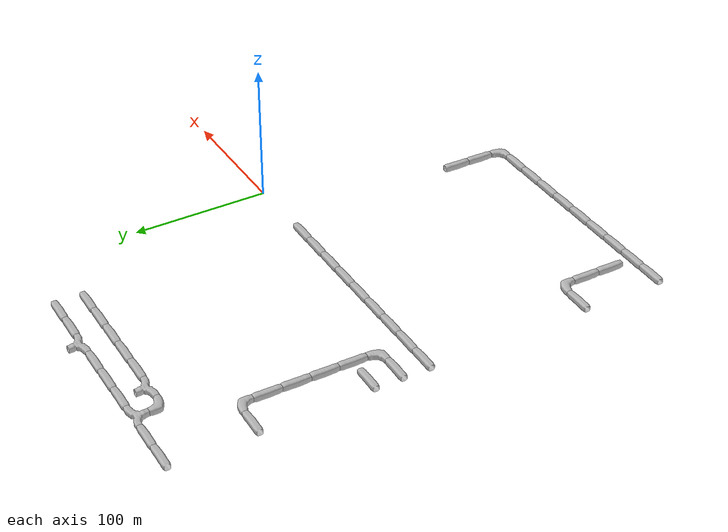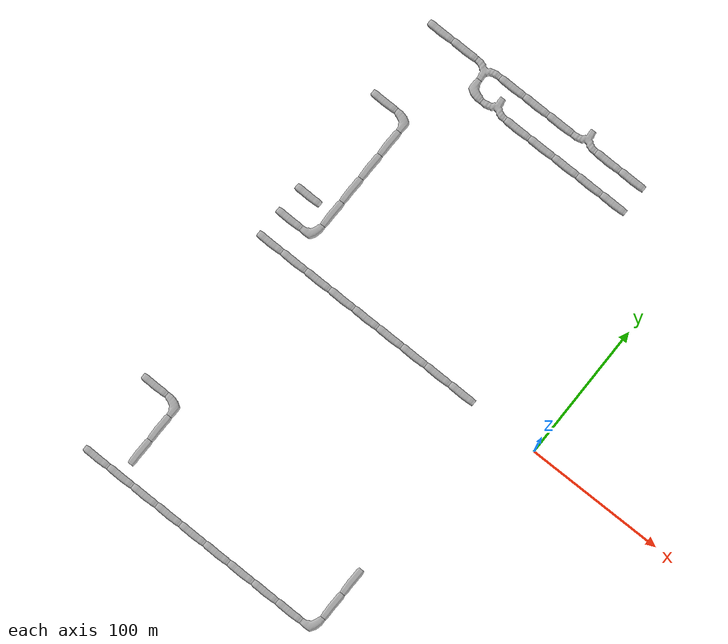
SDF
<sdf version="1.6">
 <world name="cave_16000">
  <include>
   <static>true</static>
   <name>cave_-2_-7</name>
   <pose>-40 -140 0 0 0 0.0</pose>
   <uri>model://cave_straight_20m</uri>
  </include>
  <include>
   <static>true</static>
   <name>cave_-2_-8</name>
   <pose>-40 -160 0 0 0 0.0</pose>
   <uri>model://cave_straight_20m</uri>
  </include>
  <include>
   <static>true</static>
   <name>cave_-2_-9</name>
   <pose>-40 -180 0 0 0 1.5707963267948966</pose>
   <uri>model://cave_L_20m</uri>
  </include>
  <include>
   <static>true</static>
   <name>cave_-3_-9</name>
   <pose>-60 -180 0 0 0 1.5707963267948966</pose>
   <uri>model://cave_straight_20m</uri>
  </include>
  <include>
   <static>true</static>
   <name>cave_-4_-9</name>
   <pose>-80 -180 0 0 0 1.5707963267948966</pose>
   <uri>model://cave_straight_20m</uri>
  </include>
  <include>
   <static>true</static>
   <name>cave_-5_-9</name>
   <pose>-100 -180 0 0 0 1.5707963267948966</pose>
   <uri>model://cave_straight_20m</uri>
  </include>
  <include>
   <static>true</static>
   <name>cave_-6_-9</name>
   <pose>-120 -180 0 0 0 1.5707963267948966</pose>
   <uri>model://cave_straight_20m</uri>
  </include>
  <include>
   <static>true</static>
   <name>cave_-7_-9</name>
   <pose>-140 -180 0 0 0 1.5707963267948966</pose>
   <uri>model://cave_straight_20m</uri>
  </include>
  <include>
   <static>true</static>
   <name>cave_-8_-9</name>
   <pose>-160 -180 0 0 0 1.5707963267948966</pose>
   <uri>model://cave_straight_20m</uri>
  </include>
  <include>
   <static>true</static>
   <name>cave_-9_-9</name>
   <pose>-180 -180 0 0 0 1.5707963267948966</pose>
   <uri>model://cave_straight_20m</uri>
  </include>
  <include>
   <static>true</static>
   <name>cave_-10_-9</name>
   <pose>-200 -180 0 0 0 1.5707963267948966</pose>
   <uri>model://cave_straight_20m</uri>
  </include>
  <include>
   <static>true</static>
   <name>cave_-11_-9</name>
   <pose>-220 -180 0 0 0 1.5707963267948966</pose>
   <uri>model://cave_straight_20m</uri>
  </include>
  <include>
   <static>true</static>
   <name>cave_-11_-6</name>
   <pose>-220 -120 0 0 0 1.5707963267948966</pose>
   <uri>model://cave_straight_20m</uri>
  </include>
  <include>
   <static>true</static>
   <name>cave_-10_-6</name>
   <pose>-200 -120 0 0 0 3.141592653589793</pose>
   <uri>model://cave_L_20m</uri>
  </include>
  <include>
   <static>true</static>
   <name>cave_-10_-7</name>
   <pose>-200 -140 0 0 0 0.0</pose>
   <uri>model://cave_straight_20m</uri>
  </include>
  <include>
   <static>true</static>
   <name>cave_-10_-8</name>
   <pose>-200 -160 0 0 0 0.0</pose>
   <uri>model://cave_straight_20m</uri>
  </include>
  <include>
   <static>true</static>
   <name>cave_-3_0</name>
   <pose>-60 0 0 0 0 1.5707963267948966</pose>
   <uri>model://cave_straight_20m</uri>
  </include>
  <include>
   <static>true</static>
   <name>cave_-4_0</name>
   <pose>-80 0 0 0 0 1.5707963267948966</pose>
   <uri>model://cave_straight_20m</uri>
  </include>
  <include>
   <static>true</static>
   <name>cave_-5_0</name>
   <pose>-100 0 0 0 0 1.5707963267948966</pose>
   <uri>model://cave_straight_20m</uri>
  </include>
  <include>
   <static>true</static>
   <name>cave_-6_0</name>
   <pose>-120 0 0 0 0 1.5707963267948966</pose>
   <uri>model://cave_straight_20m</uri>
  </include>
  <include>
   <static>true</static>
   <name>cave_-7_0</name>
   <pose>-140 0 0 0 0 1.5707963267948966</pose>
   <uri>model://cave_straight_20m</uri>
  </include>
  <include>
   <static>true</static>
   <name>cave_-8_0</name>
   <pose>-160 0 0 0 0 1.5707963267948966</pose>
   <uri>model://cave_straight_20m</uri>
  </include>
  <include>
   <static>true</static>
   <name>cave_-9_0</name>
   <pose>-180 0 0 0 0 1.5707963267948966</pose>
   <uri>model://cave_straight_20m</uri>
  </include>
  <include>
   <static>true</static>
   <name>cave_-10_0</name>
   <pose>-200 0 0 0 0 1.5707963267948966</pose>
   <uri>model://cave_straight_20m</uri>
  </include>
  <include>
   <static>true</static>
   <name>cave_-11_0</name>
   <pose>-220 0 0 0 0 1.5707963267948966</pose>
   <uri>model://cave_straight_20m</uri>
  </include>
  <include>
   <static>true</static>
   <name>cave_-11_1</name>
   <pose>-220 20 0 0 0 1.5707963267948966</pose>
   <uri>model://cave_straight_20m</uri>
  </include>
  <include>
   <static>true</static>
   <name>cave_-10_1</name>
   <pose>-200 20 0 0 0 1.5707963267948966</pose>
   <uri>model://cave_L_20m</uri>
  </include>
  <include>
   <static>true</static>
   <name>cave_-10_2</name>
   <pose>-200 40 0 0 0 0.0</pose>
   <uri>model://cave_straight_20m</uri>
  </include>
  <include>
   <static>true</static>
   <name>cave_-10_3</name>
   <pose>-200 60 0 0 0 0.0</pose>
   <uri>model://cave_straight_20m</uri>
  </include>
  <include>
   <static>true</static>
   <name>cave_-10_4</name>
   <pose>-200 80 0 0 0 0.0</pose>
   <uri>model://cave_straight_20m</uri>
  </include>
  <include>
   <static>true</static>
   <name>cave_-10_5</name>
   <pose>-200 100 0 0 0 0.0</pose>
   <uri>model://cave_straight_20m</uri>
  </include>
  <include>
   <static>true</static>
   <name>cave_-10_6</name>
   <pose>-200 120 0 0 0 3.141592653589793</pose>
   <uri>model://cave_L_20m</uri>
  </include>
  <include>
   <static>true</static>
   <name>cave_-11_6</name>
   <pose>-220 120 0 0 0 1.5707963267948966</pose>
   <uri>model://cave_straight_20m</uri>
  </include>
  <include>
   <static>true</static>
   <name>cave_-11_2</name>
   <pose>-220 40 0 0 0 1.5707963267948966</pose>
   <uri>model://cave_straight_20m</uri>
  </include>
  <include>
   <static>true</static>
   <name>cave_-3_9</name>
   <pose>-60 180 0 0 0 1.5707963267948966</pose>
   <uri>model://cave_straight_20m</uri>
  </include>
  <include>
   <static>true</static>
   <name>cave_-4_9</name>
   <pose>-80 180 0 0 0 1.5707963267948966</pose>
   <uri>model://cave_straight_20m</uri>
  </include>
  <include>
   <static>true</static>
   <name>cave_-5_9</name>
   <pose>-100 180 0 0 0 0.0</pose>
   <uri>model://cave_3way_20m</uri>
  </include>
  <include>
   <static>true</static>
   <name>cave_-6_9</name>
   <pose>-120 180 0 0 0 1.5707963267948966</pose>
   <uri>model://cave_straight_20m</uri>
  </include>
  <include>
   <static>true</static>
   <name>cave_-7_9</name>
   <pose>-140 180 0 0 0 1.5707963267948966</pose>
   <uri>model://cave_straight_20m</uri>
  </include>
  <include>
   <static>true</static>
   <name>cave_-8_9</name>
   <pose>-160 180 0 0 0 1.5707963267948966</pose>
   <uri>model://cave_straight_20m</uri>
  </include>
  <include>
   <static>true</static>
   <name>cave_-9_9</name>
   <pose>-180 180 0 0 0 3.141592653589793</pose>
   <uri>model://cave_3way_20m</uri>
  </include>
  <include>
   <static>true</static>
   <name>cave_-9_8</name>
   <pose>-180 160 0 0 0 0.0</pose>
   <uri>model://cave_L_20m</uri>
  </include>
  <include>
   <static>true</static>
   <name>cave_-8_8</name>
   <pose>-160 160 0 0 0 0.0</pose>
   <uri>model://cave_3way_20m</uri>
  </include>
  <include>
   <static>true</static>
   <name>cave_-7_8</name>
   <pose>-140 160 0 0 0 1.5707963267948966</pose>
   <uri>model://cave_straight_20m</uri>
  </include>
  <include>
   <static>true</static>
   <name>cave_-6_8</name>
   <pose>-120 160 0 0 0 1.5707963267948966</pose>
   <uri>model://cave_straight_20m</uri>
  </include>
  <include>
   <static>true</static>
   <name>cave_-5_8</name>
   <pose>-100 160 0 0 0 1.5707963267948966</pose>
   <uri>model://cave_straight_20m</uri>
  </include>
  <include>
   <static>true</static>
   <name>cave_-4_8</name>
   <pose>-80 160 0 0 0 1.5707963267948966</pose>
   <uri>model://cave_straight_20m</uri>
  </include>
  <include>
   <static>true</static>
   <name>cave_-3_8</name>
   <pose>-60 160 0 0 0 1.5707963267948966</pose>
   <uri>model://cave_straight_20m</uri>
  </include>
  <include>
   <static>true</static>
   <name>cave_-10_9</name>
   <pose>-200 180 0 0 0 1.5707963267948966</pose>
   <uri>model://cave_straight_20m</uri>
  </include>
  <include>
   <static>true</static>
   <name>cave_-11_9</name>
   <pose>-220 180 0 0 0 1.5707963267948966</pose>
   <uri>model://cave_straight_20m</uri>
  </include>
 </world>
</sdf>
